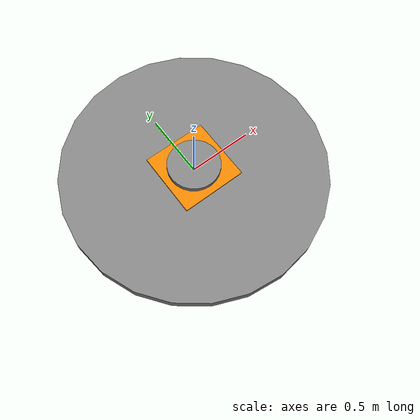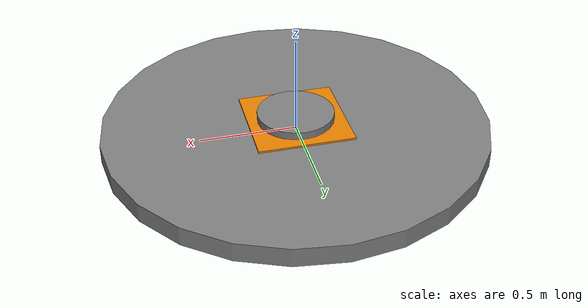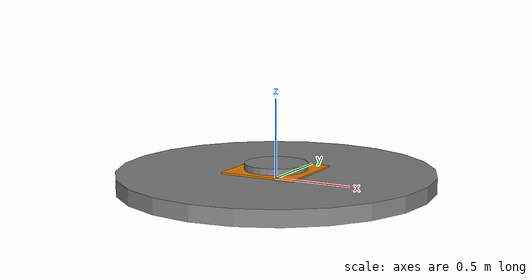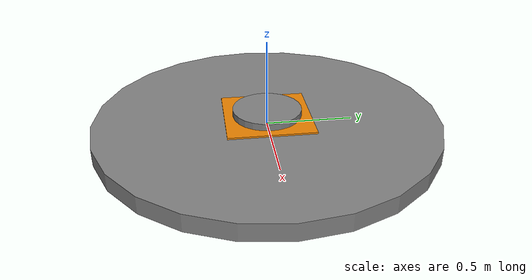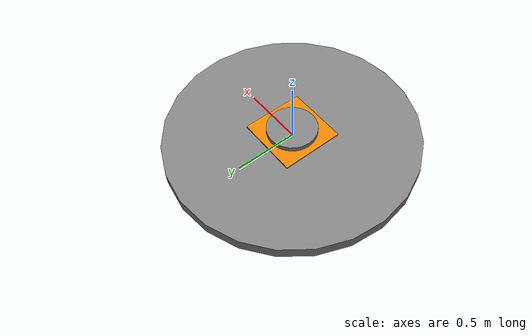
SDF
<?xml version="1.0"?>
<sdf version="1.7">
  <model name="cylinder">
    <!--
    Axes:
      +X - pointing toward the handle.
      +Z - pointing toward the top.
    Origin:
      (0, 0, 0) at the center (while ignoring the handle).
    -->
    <link name="Build_Plate">
      <inertial>
        <pose>0.0 0.0 0.0 0 0 0</pose>
        <mass>0.321</mass>
        <inertia>
          <ixx> 0.000446</ixx>
          <ixy> 0.000000</ixy>
          <ixz>-0.000016</ixz>
          <iyy> 0.000515</iyy>
          <iyz> 0.000000</iyz>
          <izz> 0.000415</izz>
        </inertia>
      </inertial>
      <visual name="visual_cylinder">
        <geometry>
          <cylinder>
            <radius>1.0</radius>
            <length>0.1</length>
          </cylinder>
        </geometry>
        <material>
          <diffuse>0.5 0.5 0.5 1.0</diffuse>
        </material>
      </visual>
      <visual name="visual_box">
        <pose>0 0 0 0 0 0</pose>
        <geometry>
          <box>
            <size>0.5 0.5 0.12</size>
          </box>
        </geometry>
        <material>
          <diffuse>0.9 0.5 0 1.0</diffuse>
        </material>
      </visual>
      <collision name="collision_cylinder">
        <geometry>
          <cylinder>
            <radius>1.0</radius>
            <length>0.1</length>
          </cylinder>
        </geometry>
      </collision>
      <collision name="collision_box">
        <pose>0.0 0 0.0 0 0 0</pose>
        <geometry>
          <box>
            <size>0.036 0.013 0.072</size>
          </box>
        </geometry>
      </collision>

    </link>
<link name="Rotator_Base">
      <inertial>
        <pose>0.0 0.00000 0.2 0 0 0</pose>
        <mass>0.321</mass>
        <inertia>
          <ixx> 0.000446</ixx>
          <ixy> 0.000000</ixy>
          <ixz>-0.000016</ixz>
          <iyy> 0.000515</iyy>
          <iyz> 0.000000</iyz>
          <izz> 0.000415</izz>
        </inertia>
      </inertial>
      <visual name="visual_cylinder_small">
        <geometry>
          <cylinder>
            <radius>0.2</radius>
            <length>0.2</length>
          </cylinder>
        </geometry>
        <material>
          <diffuse>0.5 0.5 0.5 1.0</diffuse>
        </material>
      </visual>

      <collision name="collision_cylinder_small">
        <geometry>
          <cylinder>
            <radius>0.2</radius>
            <length>0.2</length>
          </cylinder>
        </geometry>
      </collision>
    </link>
    <joint name="Rotator_Plate" type="revolute">
      <!-- Pose of the joint frame in the pole's frame (located at the point
           mass) -->
      <pose>0 0 0.5 0 0 0</pose>
      <parent>Rotator_Base</parent>
      <child>Build_Plate</child>
      <axis>
        <xyz>0.0 0.0 1.0</xyz>
        <limit>
          <effort>500</effort>
          <velocity>1.4835298641951802</velocity>
          <drake:acceleration>8.57</drake:acceleration>
        </limit>
      </axis>
    </joint>
  </model>
</sdf>
